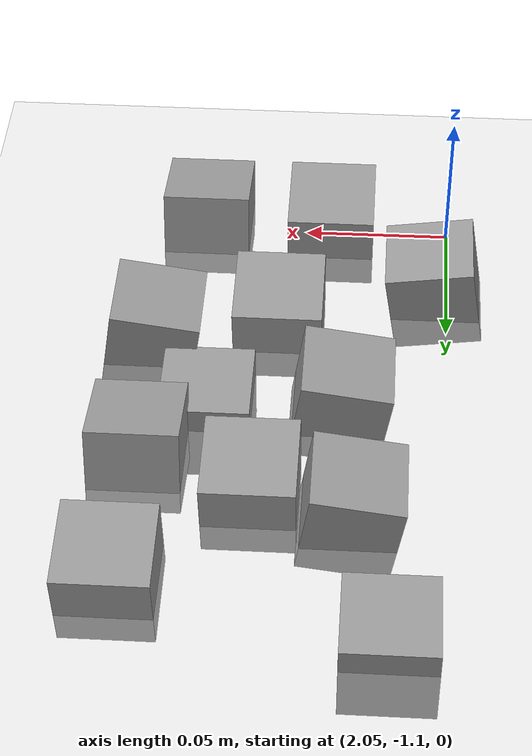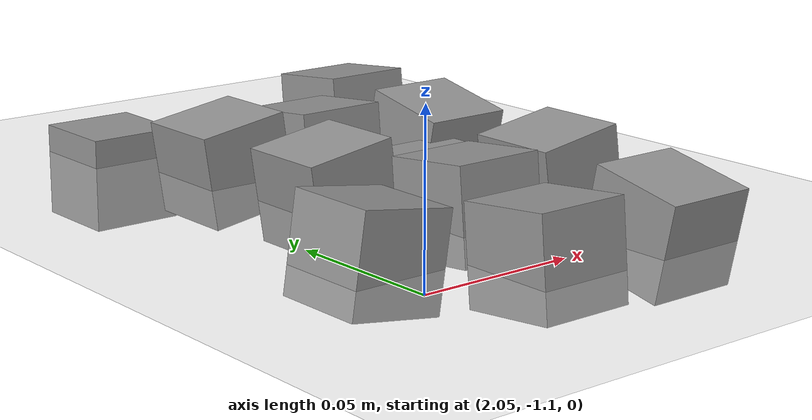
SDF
<sdf version="1.7">
 <world name="default">
  <model name="ground_plane">
   <static>1</static>
   <link name="link">
    <collision name="collision">
     <geometry><plane><normal>0 0 1</normal><size>100 100</size></plane></geometry>
     <surface><friction><ode><mu>100</mu><mu2>50</mu2></ode></friction></surface>
    </collision>
    <visual name="visual">
     <cast_shadows>0</cast_shadows>
     <geometry><plane><normal>0 0 1</normal><size>100 100</size></plane></geometry>
     <material>
      <script><uri>file://media/materials/scripts/gazebo.material</uri><name>Gazebo/Grey</name></script>
     </material>
    </visual>
   </link>
  </model>
  <model name="stone_road_10">
   <link name="link_0_clone_2_clone_1">
    <inertial>
     <mass>1</mass>
     <inertia>
      <ixx>0.166667</ixx>
      <ixy>0</ixy>
      <ixz>0</ixz>
      <iyy>0.166667</iyy>
      <iyz>0</iyz>
      <izz>0.166667</izz>
     </inertia>
    </inertial>
    <pose>0.041447 0.006316 0.003778 0 0.15 0</pose>
    <kinematic>1</kinematic>
    <visual name="visual">
     <geometry><box><size>0.03 0.03 0.03</size></box></geometry>
     <material>
      <lighting>1</lighting>
      <script><uri>file://media/materials/scripts/gazebo.material</uri><name>Gazebo/Grey</name></script>
      <shader type="pixel"><normal_map>__default__</normal_map></shader>
      <ambient>0.3 0.3 0.3 1</ambient>
      <diffuse>0.7 0.7 0.7 1</diffuse>
      <specular>0.01 0.01 0.01 1</specular>
      <emissive>0 0 0 1</emissive>
     </material>
    </visual>
    <collision name="collision">
     <geometry><box><size>0.03 0.03 0.03</size></box></geometry>
     <surface>
      <friction>
       <ode><mu>1</mu><mu2>1</mu2><fdir1>0 0 0</fdir1><slip1>0</slip1><slip2>0</slip2></ode>
       <torsional>
        <coefficient>1</coefficient>
        <patch_radius>0</patch_radius>
        <surface_radius>0</surface_radius>
        <use_patch_radius>1</use_patch_radius>
        <ode><slip>0</slip></ode>
       </torsional>
      </friction>
      <bounce><restitution_coefficient>0</restitution_coefficient><threshold>1e+06</threshold></bounce>
      <contact>
       <collide_without_contact>0</collide_without_contact>
       <collide_without_contact_bitmask>1</collide_without_contact_bitmask>
       <collide_bitmask>1</collide_bitmask>
       <ode>
        <soft_cfm>0</soft_cfm>
        <soft_erp>0.2</soft_erp>
        <kp>1e+13</kp>
        <kd>1</kd>
        <max_vel>0.01</max_vel>
        <min_depth>0</min_depth>
       </ode>
       <bullet>
        <split_impulse>1</split_impulse>
        <split_impulse_penetration_threshold>-0.01</split_impulse_penetration_threshold>
        <soft_cfm>0</soft_cfm>
        <soft_erp>0.2</soft_erp>
        <kp>1e+13</kp>
        <kd>1</kd>
       </bullet>
      </contact>
     </surface>
    </collision>
   </link>
   <link name="link_0_clone_2_clone_2">
    <inertial>
     <mass>1</mass>
     <inertia>
      <ixx>0.166667</ixx>
      <ixy>0</ixy>
      <ixz>0</ixz>
      <iyy>0.166667</iyy>
      <iyz>0</iyz>
      <izz>0.166667</izz>
     </inertia>
    </inertial>
    <pose>0.066563 0.110568 0.003778 0 -0.15 0</pose>
    <kinematic>1</kinematic>
    <visual name="visual">
     <geometry><box><size>0.03 0.03 0.03</size></box></geometry>
     <material>
      <lighting>1</lighting>
      <script><uri>file://media/materials/scripts/gazebo.material</uri><name>Gazebo/Grey</name></script>
      <shader type="pixel"><normal_map>__default__</normal_map></shader>
      <ambient>0.3 0.3 0.3 1</ambient>
      <diffuse>0.7 0.7 0.7 1</diffuse>
      <specular>0.01 0.01 0.01 1</specular>
      <emissive>0 0 0 1</emissive>
     </material>
    </visual>
    <collision name="collision">
     <geometry><box><size>0.03 0.03 0.03</size></box></geometry>
     <surface>
      <friction>
       <ode><mu>1</mu><mu2>1</mu2><fdir1>0 0 0</fdir1><slip1>0</slip1><slip2>0</slip2></ode>
       <torsional>
        <coefficient>1</coefficient>
        <patch_radius>0</patch_radius>
        <surface_radius>0</surface_radius>
        <use_patch_radius>1</use_patch_radius>
        <ode><slip>0</slip></ode>
       </torsional>
      </friction>
      <bounce><restitution_coefficient>0</restitution_coefficient><threshold>1e+06</threshold></bounce>
      <contact>
       <collide_without_contact>0</collide_without_contact>
       <collide_without_contact_bitmask>1</collide_without_contact_bitmask>
       <collide_bitmask>1</collide_bitmask>
       <ode>
        <soft_cfm>0</soft_cfm>
        <soft_erp>0.2</soft_erp>
        <kp>1e+13</kp>
        <kd>1</kd>
        <max_vel>0.01</max_vel>
        <min_depth>0</min_depth>
       </ode>
       <bullet>
        <split_impulse>1</split_impulse>
        <split_impulse_penetration_threshold>-0.01</split_impulse_penetration_threshold>
        <soft_cfm>0</soft_cfm>
        <soft_erp>0.2</soft_erp>
        <kp>1e+13</kp>
        <kd>1</kd>
       </bullet>
      </contact>
     </surface>
    </collision>
   </link>
   <link name="link_0_clone_2_clone_2_clone_13_clone">
    <inertial>
     <mass>1</mass>
     <inertia>
      <ixx>0.166667</ixx>
      <ixy>0</ixy>
      <ixz>0</ixz>
      <iyy>0.166667</iyy>
      <iyz>0</iyz>
      <izz>0.166667</izz>
     </inertia>
    </inertial>
    <pose>0.138846 0.140956 0.003778 -0.1 0 0</pose>
    <kinematic>1</kinematic>
    <visual name="visual">
     <geometry><box><size>0.03 0.03 0.03</size></box></geometry>
     <material>
      <lighting>1</lighting>
      <script><uri>file://media/materials/scripts/gazebo.material</uri><name>Gazebo/Grey</name></script>
      <shader type="pixel"><normal_map>__default__</normal_map></shader>
      <ambient>0.3 0.3 0.3 1</ambient>
      <diffuse>0.7 0.7 0.7 1</diffuse>
      <specular>0.01 0.01 0.01 1</specular>
      <emissive>0 0 0 1</emissive>
     </material>
    </visual>
    <collision name="collision">
     <geometry><box><size>0.03 0.03 0.03</size></box></geometry>
     <surface>
      <friction>
       <ode><mu>1</mu><mu2>1</mu2><fdir1>0 0 0</fdir1><slip1>0</slip1><slip2>0</slip2></ode>
       <torsional>
        <coefficient>1</coefficient>
        <patch_radius>0</patch_radius>
        <surface_radius>0</surface_radius>
        <use_patch_radius>1</use_patch_radius>
        <ode><slip>0</slip></ode>
       </torsional>
      </friction>
      <bounce><restitution_coefficient>0</restitution_coefficient><threshold>1e+06</threshold></bounce>
      <contact>
       <collide_without_contact>0</collide_without_contact>
       <collide_without_contact_bitmask>1</collide_without_contact_bitmask>
       <collide_bitmask>1</collide_bitmask>
       <ode>
        <soft_cfm>0</soft_cfm>
        <soft_erp>0.2</soft_erp>
        <kp>1e+13</kp>
        <kd>1</kd>
        <max_vel>0.01</max_vel>
        <min_depth>0</min_depth>
       </ode>
       <bullet>
        <split_impulse>1</split_impulse>
        <split_impulse_penetration_threshold>-0.01</split_impulse_penetration_threshold>
        <soft_cfm>0</soft_cfm>
        <soft_erp>0.2</soft_erp>
        <kp>1e+13</kp>
        <kd>1</kd>
       </bullet>
      </contact>
     </surface>
    </collision>
   </link>
   <link name="link_0_clone_2_clone_2_clone_13_clone_clone_0">
    <inertial>
     <mass>1</mass>
     <inertia>
      <ixx>0.166667</ixx>
      <ixy>0</ixy>
      <ixz>0</ixz>
      <iyy>0.166667</iyy>
      <iyz>0</iyz>
      <izz>0.166667</izz>
     </inertia>
    </inertial>
    <pose>0.094072 0.02539 0.003778 -0.1 0 0</pose>
    <kinematic>1</kinematic>
    <visual name="visual">
     <geometry><box><size>0.03 0.03 0.03</size></box></geometry>
     <material>
      <lighting>1</lighting>
      <script><uri>file://media/materials/scripts/gazebo.material</uri><name>Gazebo/Grey</name></script>
      <shader type="pixel"><normal_map>__default__</normal_map></shader>
      <ambient>0.3 0.3 0.3 1</ambient>
      <diffuse>0.7 0.7 0.7 1</diffuse>
      <specular>0.01 0.01 0.01 1</specular>
      <emissive>0 0 0 1</emissive>
     </material>
    </visual>
    <collision name="collision">
     <geometry><box><size>0.03 0.03 0.03</size></box></geometry>
     <surface>
      <friction>
       <ode><mu>1</mu><mu2>1</mu2><fdir1>0 0 0</fdir1><slip1>0</slip1><slip2>0</slip2></ode>
       <torsional>
        <coefficient>1</coefficient>
        <patch_radius>0</patch_radius>
        <surface_radius>0</surface_radius>
        <use_patch_radius>1</use_patch_radius>
        <ode><slip>0</slip></ode>
       </torsional>
      </friction>
      <bounce><restitution_coefficient>0</restitution_coefficient><threshold>1e+06</threshold></bounce>
      <contact>
       <collide_without_contact>0</collide_without_contact>
       <collide_without_contact_bitmask>1</collide_without_contact_bitmask>
       <collide_bitmask>1</collide_bitmask>
       <ode>
        <soft_cfm>0</soft_cfm>
        <soft_erp>0.2</soft_erp>
        <kp>1e+13</kp>
        <kd>1</kd>
        <max_vel>0.01</max_vel>
        <min_depth>0</min_depth>
       </ode>
       <bullet>
        <split_impulse>1</split_impulse>
        <split_impulse_penetration_threshold>-0.01</split_impulse_penetration_threshold>
        <soft_cfm>0</soft_cfm>
        <soft_erp>0.2</soft_erp>
        <kp>1e+13</kp>
        <kd>1</kd>
       </bullet>
      </contact>
     </surface>
    </collision>
   </link>
   <link name="link_0_clone_2_clone_2_clone_13_clone_clone_1">
    <inertial>
     <mass>1</mass>
     <inertia>
      <ixx>0.166667</ixx>
      <ixy>0</ixy>
      <ixz>0</ixz>
      <iyy>0.166667</iyy>
      <iyz>0</iyz>
      <izz>0.166667</izz>
     </inertia>
    </inertial>
    <pose>0.098415 0.103772 0.003778 -0.1 0 0</pose>
    <kinematic>1</kinematic>
    <visual name="visual">
     <geometry><box><size>0.03 0.03 0.03</size></box></geometry>
     <material>
      <lighting>1</lighting>
      <script><uri>file://media/materials/scripts/gazebo.material</uri><name>Gazebo/Grey</name></script>
      <shader type="pixel"><normal_map>__default__</normal_map></shader>
      <ambient>0.3 0.3 0.3 1</ambient>
      <diffuse>0.7 0.7 0.7 1</diffuse>
      <specular>0.01 0.01 0.01 1</specular>
      <emissive>0 0 0 1</emissive>
     </material>
    </visual>
    <collision name="collision">
     <geometry><box><size>0.03 0.03 0.03</size></box></geometry>
     <surface>
      <friction>
       <ode><mu>1</mu><mu2>1</mu2><fdir1>0 0 0</fdir1><slip1>0</slip1><slip2>0</slip2></ode>
       <torsional>
        <coefficient>1</coefficient>
        <patch_radius>0</patch_radius>
        <surface_radius>0</surface_radius>
        <use_patch_radius>1</use_patch_radius>
        <ode><slip>0</slip></ode>
       </torsional>
      </friction>
      <bounce><restitution_coefficient>0</restitution_coefficient><threshold>1e+06</threshold></bounce>
      <contact>
       <collide_without_contact>0</collide_without_contact>
       <collide_without_contact_bitmask>1</collide_without_contact_bitmask>
       <collide_bitmask>1</collide_bitmask>
       <ode>
        <soft_cfm>0</soft_cfm>
        <soft_erp>0.2</soft_erp>
        <kp>1e+13</kp>
        <kd>1</kd>
        <max_vel>0.01</max_vel>
        <min_depth>0</min_depth>
       </ode>
       <bullet>
        <split_impulse>1</split_impulse>
        <split_impulse_penetration_threshold>-0.01</split_impulse_penetration_threshold>
        <soft_cfm>0</soft_cfm>
        <soft_erp>0.2</soft_erp>
        <kp>1e+13</kp>
        <kd>1</kd>
       </bullet>
      </contact>
     </surface>
    </collision>
   </link>
   <link name="link_0_clone_2_clone_2_clone_13_clone_clone_16_clone">
    <inertial>
     <mass>1</mass>
     <inertia>
      <ixx>0.166667</ixx>
      <ixy>0</ixy>
      <ixz>0</ixz>
      <iyy>0.166667</iyy>
      <iyz>0</iyz>
      <izz>0.166667</izz>
     </inertia>
    </inertial>
    <pose>0.0535 0.156403 -0.006222 0 -0 0</pose>
    <kinematic>1</kinematic>
    <visual name="visual">
     <geometry><box><size>0.03 0.03 0.03</size></box></geometry>
     <material>
      <lighting>1</lighting>
      <script><uri>file://media/materials/scripts/gazebo.material</uri><name>Gazebo/Grey</name></script>
      <shader type="pixel"><normal_map>__default__</normal_map></shader>
      <ambient>0.3 0.3 0.3 1</ambient>
      <diffuse>0.7 0.7 0.7 1</diffuse>
      <specular>0.01 0.01 0.01 1</specular>
      <emissive>0 0 0 1</emissive>
     </material>
    </visual>
    <collision name="collision">
     <geometry><box><size>0.03 0.03 0.03</size></box></geometry>
     <surface>
      <friction>
       <ode><mu>1</mu><mu2>1</mu2><fdir1>0 0 0</fdir1><slip1>0</slip1><slip2>0</slip2></ode>
       <torsional>
        <coefficient>1</coefficient>
        <patch_radius>0</patch_radius>
        <surface_radius>0</surface_radius>
        <use_patch_radius>1</use_patch_radius>
        <ode><slip>0</slip></ode>
       </torsional>
      </friction>
      <bounce><restitution_coefficient>0</restitution_coefficient><threshold>1e+06</threshold></bounce>
      <contact>
       <collide_without_contact>0</collide_without_contact>
       <collide_without_contact_bitmask>1</collide_without_contact_bitmask>
       <collide_bitmask>1</collide_bitmask>
       <ode>
        <soft_cfm>0</soft_cfm>
        <soft_erp>0.2</soft_erp>
        <kp>1e+13</kp>
        <kd>1</kd>
        <max_vel>0.01</max_vel>
        <min_depth>0</min_depth>
       </ode>
       <bullet>
        <split_impulse>1</split_impulse>
        <split_impulse_penetration_threshold>-0.01</split_impulse_penetration_threshold>
        <soft_cfm>0</soft_cfm>
        <soft_erp>0.2</soft_erp>
        <kp>1e+13</kp>
        <kd>1</kd>
       </bullet>
      </contact>
     </surface>
    </collision>
   </link>
   <link name="link_0_clone_2_clone_2_clone_13_clone_clone_16_clone_20">
    <inertial>
     <mass>1</mass>
     <inertia>
      <ixx>0.166667</ixx>
      <ixy>0</ixy>
      <ixz>0</ixz>
      <iyy>0.166667</iyy>
      <iyz>0</iyz>
      <izz>0.166667</izz>
     </inertia>
    </inertial>
    <pose>0.115763 0.063063 -0.006222 0 -0 0</pose>
    <kinematic>1</kinematic>
    <visual name="visual">
     <geometry><box><size>0.03 0.03 0.03</size></box></geometry>
     <material>
      <lighting>1</lighting>
      <script><uri>file://media/materials/scripts/gazebo.material</uri><name>Gazebo/Grey</name></script>
      <shader type="pixel"><normal_map>__default__</normal_map></shader>
      <ambient>0.3 0.3 0.3 1</ambient>
      <diffuse>0.7 0.7 0.7 1</diffuse>
      <specular>0.01 0.01 0.01 1</specular>
      <emissive>0 0 0 1</emissive>
     </material>
    </visual>
    <collision name="collision">
     <geometry><box><size>0.03 0.03 0.03</size></box></geometry>
     <surface>
      <friction>
       <ode><mu>1</mu><mu2>1</mu2><fdir1>0 0 0</fdir1><slip1>0</slip1><slip2>0</slip2></ode>
       <torsional>
        <coefficient>1</coefficient>
        <patch_radius>0</patch_radius>
        <surface_radius>0</surface_radius>
        <use_patch_radius>1</use_patch_radius>
        <ode><slip>0</slip></ode>
       </torsional>
      </friction>
      <bounce><restitution_coefficient>0</restitution_coefficient><threshold>1e+06</threshold></bounce>
      <contact>
       <collide_without_contact>0</collide_without_contact>
       <collide_without_contact_bitmask>1</collide_without_contact_bitmask>
       <collide_bitmask>1</collide_bitmask>
       <ode>
        <soft_cfm>0</soft_cfm>
        <soft_erp>0.2</soft_erp>
        <kp>1e+13</kp>
        <kd>1</kd>
        <max_vel>0.01</max_vel>
        <min_depth>0</min_depth>
       </ode>
       <bullet>
        <split_impulse>1</split_impulse>
        <split_impulse_penetration_threshold>-0.01</split_impulse_penetration_threshold>
        <soft_cfm>0</soft_cfm>
        <soft_erp>0.2</soft_erp>
        <kp>1e+13</kp>
        <kd>1</kd>
       </bullet>
      </contact>
     </surface>
    </collision>
   </link>
   <link name="link_0_clone_2_clone_2_clone_13_clone_clone_4">
    <inertial>
     <mass>1</mass>
     <inertia>
      <ixx>0.166667</ixx>
      <ixy>0</ixy>
      <ixz>0</ixz>
      <iyy>0.166667</iyy>
      <iyz>0</iyz>
      <izz>0.166667</izz>
     </inertia>
    </inertial>
    <pose>0.078198 -0.024053 0.003778 -0.1 0 0</pose>
    <kinematic>1</kinematic>
    <visual name="visual">
     <geometry><box><size>0.03 0.03 0.03</size></box></geometry>
     <material>
      <lighting>1</lighting>
      <script><uri>file://media/materials/scripts/gazebo.material</uri><name>Gazebo/Grey</name></script>
      <shader type="pixel"><normal_map>__default__</normal_map></shader>
      <ambient>0.3 0.3 0.3 1</ambient>
      <diffuse>0.7 0.7 0.7 1</diffuse>
      <specular>0.01 0.01 0.01 1</specular>
      <emissive>0 0 0 1</emissive>
     </material>
    </visual>
    <collision name="collision">
     <geometry><box><size>0.03 0.03 0.03</size></box></geometry>
     <surface>
      <friction>
       <ode><mu>1</mu><mu2>1</mu2><fdir1>0 0 0</fdir1><slip1>0</slip1><slip2>0</slip2></ode>
       <torsional>
        <coefficient>1</coefficient>
        <patch_radius>0</patch_radius>
        <surface_radius>0</surface_radius>
        <use_patch_radius>1</use_patch_radius>
        <ode><slip>0</slip></ode>
       </torsional>
      </friction>
      <bounce><restitution_coefficient>0</restitution_coefficient><threshold>1e+06</threshold></bounce>
      <contact>
       <collide_without_contact>0</collide_without_contact>
       <collide_without_contact_bitmask>1</collide_without_contact_bitmask>
       <collide_bitmask>1</collide_bitmask>
       <ode>
        <soft_cfm>0</soft_cfm>
        <soft_erp>0.2</soft_erp>
        <kp>1e+13</kp>
        <kd>1</kd>
        <max_vel>0.01</max_vel>
        <min_depth>0</min_depth>
       </ode>
       <bullet>
        <split_impulse>1</split_impulse>
        <split_impulse_penetration_threshold>-0.01</split_impulse_penetration_threshold>
        <soft_cfm>0</soft_cfm>
        <soft_erp>0.2</soft_erp>
        <kp>1e+13</kp>
        <kd>1</kd>
       </bullet>
      </contact>
     </surface>
    </collision>
   </link>
   <link name="link_0_clone_2_clone_2_clone_6">
    <inertial>
     <mass>1</mass>
     <inertia>
      <ixx>0.166667</ixx>
      <ixy>0</ixy>
      <ixz>0</ixz>
      <iyy>0.166667</iyy>
      <iyz>0</iyz>
      <izz>0.166667</izz>
     </inertia>
    </inertial>
    <pose>0.136141 0.034017 0.003778 0 -0.15 0</pose>
    <kinematic>1</kinematic>
    <visual name="visual">
     <geometry><box><size>0.03 0.03 0.03</size></box></geometry>
     <material>
      <lighting>1</lighting>
      <script><uri>file://media/materials/scripts/gazebo.material</uri><name>Gazebo/Grey</name></script>
      <shader type="pixel"><normal_map>__default__</normal_map></shader>
      <ambient>0.3 0.3 0.3 1</ambient>
      <diffuse>0.7 0.7 0.7 1</diffuse>
      <specular>0.01 0.01 0.01 1</specular>
      <emissive>0 0 0 1</emissive>
     </material>
    </visual>
    <collision name="collision">
     <geometry><box><size>0.03 0.03 0.03</size></box></geometry>
     <surface>
      <friction>
       <ode><mu>1</mu><mu2>1</mu2><fdir1>0 0 0</fdir1><slip1>0</slip1><slip2>0</slip2></ode>
       <torsional>
        <coefficient>1</coefficient>
        <patch_radius>0</patch_radius>
        <surface_radius>0</surface_radius>
        <use_patch_radius>1</use_patch_radius>
        <ode><slip>0</slip></ode>
       </torsional>
      </friction>
      <bounce><restitution_coefficient>0</restitution_coefficient><threshold>1e+06</threshold></bounce>
      <contact>
       <collide_without_contact>0</collide_without_contact>
       <collide_without_contact_bitmask>1</collide_without_contact_bitmask>
       <collide_bitmask>1</collide_bitmask>
       <ode>
        <soft_cfm>0</soft_cfm>
        <soft_erp>0.2</soft_erp>
        <kp>1e+13</kp>
        <kd>1</kd>
        <max_vel>0.01</max_vel>
        <min_depth>0</min_depth>
       </ode>
       <bullet>
        <split_impulse>1</split_impulse>
        <split_impulse_penetration_threshold>-0.01</split_impulse_penetration_threshold>
        <soft_cfm>0</soft_cfm>
        <soft_erp>0.2</soft_erp>
        <kp>1e+13</kp>
        <kd>1</kd>
       </bullet>
      </contact>
     </surface>
    </collision>
   </link>
   <link name="link_0_clone_2_clone_2_clone_9">
    <inertial>
     <mass>1</mass>
     <inertia>
      <ixx>0.166667</ixx>
      <ixy>0</ixy>
      <ixz>0</ixz>
      <iyy>0.166667</iyy>
      <iyz>0</iyz>
      <izz>0.166667</izz>
     </inertia>
    </inertial>
    <pose>0.071478 0.063212 0.003778 0 -0.15 0</pose>
    <kinematic>1</kinematic>
    <visual name="visual">
     <geometry><box><size>0.03 0.03 0.03</size></box></geometry>
     <material>
      <lighting>1</lighting>
      <script><uri>file://media/materials/scripts/gazebo.material</uri><name>Gazebo/Grey</name></script>
      <shader type="pixel"><normal_map>__default__</normal_map></shader>
      <ambient>0.3 0.3 0.3 1</ambient>
      <diffuse>0.7 0.7 0.7 1</diffuse>
      <specular>0.01 0.01 0.01 1</specular>
      <emissive>0 0 0 1</emissive>
     </material>
    </visual>
    <collision name="collision">
     <geometry><box><size>0.03 0.03 0.03</size></box></geometry>
     <surface>
      <friction>
       <ode><mu>1</mu><mu2>1</mu2><fdir1>0 0 0</fdir1><slip1>0</slip1><slip2>0</slip2></ode>
       <torsional>
        <coefficient>1</coefficient>
        <patch_radius>0</patch_radius>
        <surface_radius>0</surface_radius>
        <use_patch_radius>1</use_patch_radius>
        <ode><slip>0</slip></ode>
       </torsional>
      </friction>
      <bounce><restitution_coefficient>0</restitution_coefficient><threshold>1e+06</threshold></bounce>
      <contact>
       <collide_without_contact>0</collide_without_contact>
       <collide_without_contact_bitmask>1</collide_without_contact_bitmask>
       <collide_bitmask>1</collide_bitmask>
       <ode>
        <soft_cfm>0</soft_cfm>
        <soft_erp>0.2</soft_erp>
        <kp>1e+13</kp>
        <kd>1</kd>
        <max_vel>0.01</max_vel>
        <min_depth>0</min_depth>
       </ode>
       <bullet>
        <split_impulse>1</split_impulse>
        <split_impulse_penetration_threshold>-0.01</split_impulse_penetration_threshold>
        <soft_cfm>0</soft_cfm>
        <soft_erp>0.2</soft_erp>
        <kp>1e+13</kp>
        <kd>1</kd>
       </bullet>
      </contact>
     </surface>
    </collision>
   </link>
   <link name="link_0_clone_8">
    <inertial>
     <mass>1</mass>
     <inertia>
      <ixx>0.166667</ixx>
      <ixy>0</ixy>
      <ixz>0</ixz>
      <iyy>0.166667</iyy>
      <iyz>0</iyz>
      <izz>0.166667</izz>
     </inertia>
    </inertial>
    <pose>0.135749 0.089175 0.003778 0.2 -0 0</pose>
    <kinematic>1</kinematic>
    <visual name="visual">
     <geometry><box><size>0.03 0.03 0.03</size></box></geometry>
     <material>
      <lighting>1</lighting>
      <script><uri>file://media/materials/scripts/gazebo.material</uri><name>Gazebo/Grey</name></script>
      <shader type="pixel"><normal_map>__default__</normal_map></shader>
      <ambient>0.3 0.3 0.3 1</ambient>
      <diffuse>0.7 0.7 0.7 1</diffuse>
      <specular>0.01 0.01 0.01 1</specular>
      <emissive>0 0 0 1</emissive>
     </material>
    </visual>
    <collision name="collision">
     <geometry><box><size>0.03 0.03 0.03</size></box></geometry>
     <surface>
      <friction>
       <ode><mu>1</mu><mu2>1</mu2><fdir1>0 0 0</fdir1><slip1>0</slip1><slip2>0</slip2></ode>
       <torsional>
        <coefficient>1</coefficient>
        <patch_radius>0</patch_radius>
        <surface_radius>0</surface_radius>
        <use_patch_radius>1</use_patch_radius>
        <ode><slip>0</slip></ode>
       </torsional>
      </friction>
      <bounce><restitution_coefficient>0</restitution_coefficient><threshold>1e+06</threshold></bounce>
      <contact>
       <collide_without_contact>0</collide_without_contact>
       <collide_without_contact_bitmask>1</collide_without_contact_bitmask>
       <collide_bitmask>1</collide_bitmask>
       <ode>
        <soft_cfm>0</soft_cfm>
        <soft_erp>0.2</soft_erp>
        <kp>1e+13</kp>
        <kd>1</kd>
        <max_vel>0.01</max_vel>
        <min_depth>0</min_depth>
       </ode>
       <bullet>
        <split_impulse>1</split_impulse>
        <split_impulse_penetration_threshold>-0.01</split_impulse_penetration_threshold>
        <soft_cfm>0</soft_cfm>
        <soft_erp>0.2</soft_erp>
        <kp>1e+13</kp>
        <kd>1</kd>
       </bullet>
      </contact>
     </surface>
    </collision>
   </link>
   <link name="link_0_clone_9">
    <inertial>
     <mass>1</mass>
     <inertia>
      <ixx>0.166667</ixx>
      <ixy>0</ixy>
      <ixz>0</ixz>
      <iyy>0.166667</iyy>
      <iyz>0</iyz>
      <izz>0.166667</izz>
     </inertia>
    </inertial>
    <pose>0.122173 -0.025452 0.003778 0.2 -0 0</pose>
    <kinematic>1</kinematic>
    <visual name="visual">
     <geometry><box><size>0.03 0.03 0.03</size></box></geometry>
     <material>
      <lighting>1</lighting>
      <script><uri>file://media/materials/scripts/gazebo.material</uri><name>Gazebo/Grey</name></script>
      <shader type="pixel"><normal_map>__default__</normal_map></shader>
      <ambient>0.3 0.3 0.3 1</ambient>
      <diffuse>0.7 0.7 0.7 1</diffuse>
      <specular>0.01 0.01 0.01 1</specular>
      <emissive>0 0 0 1</emissive>
     </material>
    </visual>
    <collision name="collision">
     <geometry><box><size>0.03 0.03 0.03</size></box></geometry>
     <surface>
      <friction>
       <ode><mu>1</mu><mu2>1</mu2><fdir1>0 0 0</fdir1><slip1>0</slip1><slip2>0</slip2></ode>
       <torsional>
        <coefficient>1</coefficient>
        <patch_radius>0</patch_radius>
        <surface_radius>0</surface_radius>
        <use_patch_radius>1</use_patch_radius>
        <ode><slip>0</slip></ode>
       </torsional>
      </friction>
      <bounce><restitution_coefficient>0</restitution_coefficient><threshold>1e+06</threshold></bounce>
      <contact>
       <collide_without_contact>0</collide_without_contact>
       <collide_without_contact_bitmask>1</collide_without_contact_bitmask>
       <collide_bitmask>1</collide_bitmask>
       <ode>
        <soft_cfm>0</soft_cfm>
        <soft_erp>0.2</soft_erp>
        <kp>1e+13</kp>
        <kd>1</kd>
        <max_vel>0.01</max_vel>
        <min_depth>0</min_depth>
       </ode>
       <bullet>
        <split_impulse>1</split_impulse>
        <split_impulse_penetration_threshold>-0.01</split_impulse_penetration_threshold>
        <soft_cfm>0</soft_cfm>
        <soft_erp>0.2</soft_erp>
        <kp>1e+13</kp>
        <kd>1</kd>
       </bullet>
      </contact>
     </surface>
    </collision>
   </link>
   <static>0</static>
   <pose>2.01299 -1.07769 -0 0 -0 0</pose>
  </model>
 </world>
</sdf>
